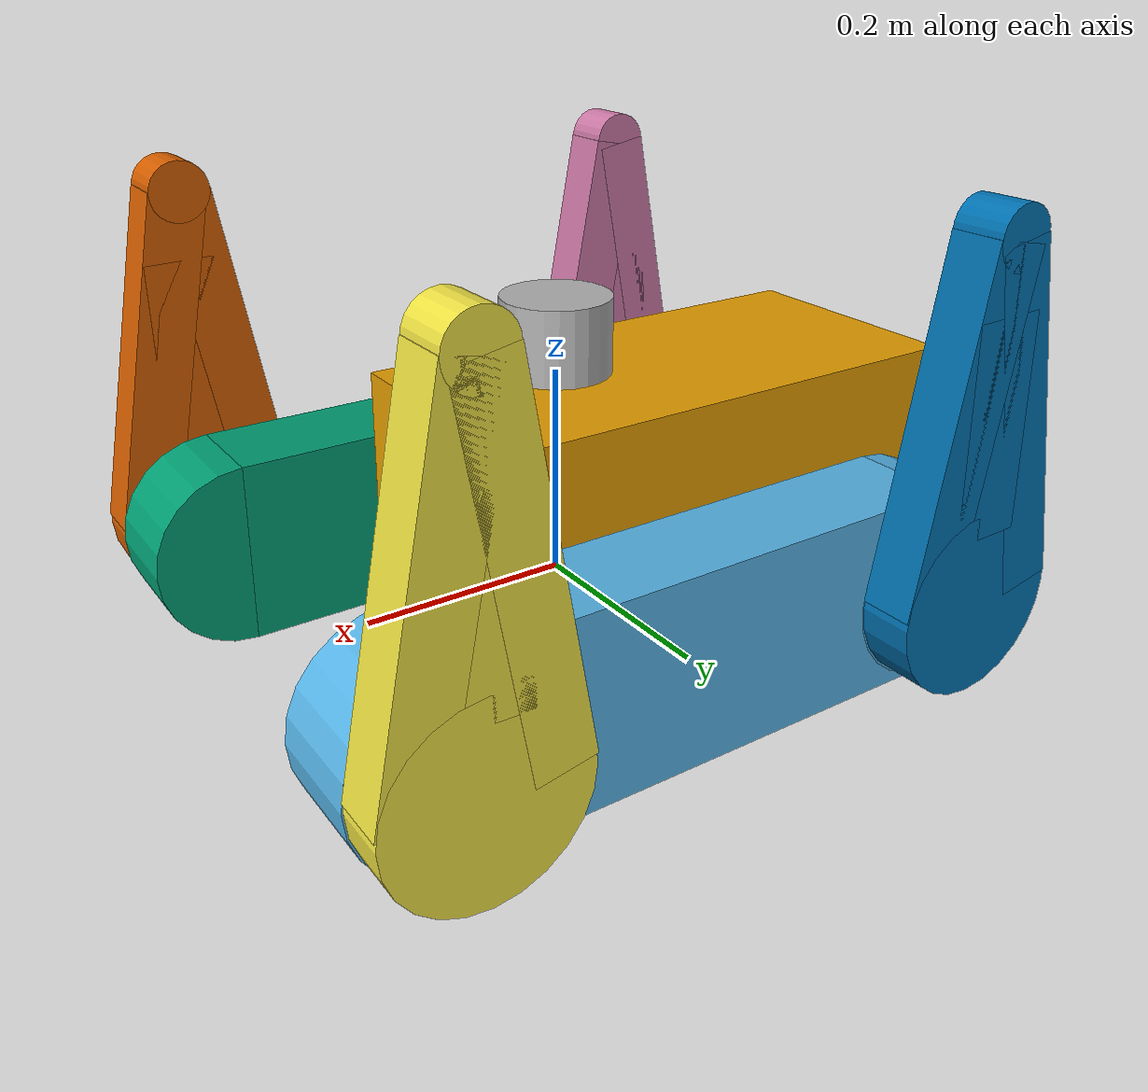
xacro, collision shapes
<?xml version="1.0"?>

<robot name="simple_tracked" xmlns:xacro="http://ros.org/wiki/xacro">
    <xacro:arg name="gpu" default="false" />
    <xacro:property name="gpu" value="$(arg gpu)" />

    <gazebo>
        <gui>
            <plugin name="keyboard"
                filename="/usr/lib/x86_64-linux-gnu/gazebo-11/plugins/libKeyboardGUIPlugin.so" />
        </gui>
    </gazebo>

    <link name="base_link">
        <!-- 惯性属性 -->
        <inertial>
            <origin xyz="-0.122 0 0.118" rpy="1.5708 0 0" />
            <mass value="13.14" />
            <inertia ixx="0.10019" ixy="0" ixz="0" iyy="0.345043" iyz="0" izz="0.302044" />
        </inertial>

        <!-- 碰撞体 -->
        <collision name="base_link_collision">
            <origin xyz="-0.122 0 0.118" rpy="0 0 0" />
            <geometry>
                <box size="0.50017 0.24093 0.139" />
            </geometry>
        </collision>

        <!-- 视觉元素 -->
        <visual name="base_link_visual">
            <origin xyz="-0.122 0 0.118" rpy="0 0 0" />
            <geometry>
                <box size="0.50017 0.24093 0.139" />
            </geometry>
        </visual>
    </link>

    <link name="left_track">
        <!-- 惯性属性 -->
        <inertial>
            <origin xyz="0 0 0.0141" rpy="0 0 0" />
            <mass value="6.06" />
            <inertia ixx="0.002731" ixy="0" ixz="0" iyy="0.032554" iyz="0.000015" izz="0.031391" />
        </inertial>

        <!-- 碰撞体1 -->
        <collision name="left_track_collision">
            <origin xyz="0 0 0.01855" rpy="1.5708 0 1.5708" />
            <geometry>
                <box size="0.09728 0.18094 0.5" />
            </geometry>
        </collision>

        <!-- 碰撞体2 -->
        <collision name="left_track_collision_1">
            <origin xyz="0.25 0 0.01855" rpy="1.5708 0 0" />
            <geometry>
                <cylinder length="0.09728" radius="0.09047" />
            </geometry>
            <!-- 同上，物理属性需通过插件或其他方式设置 -->
        </collision>

        <!-- 碰撞体3 -->
        <collision name="left_track_collision_2">
            <origin xyz="-0.25 0 0.01855" rpy="1.5708 0 0" />
            <geometry>
                <cylinder length="0.09728" radius="0.09047" />
            </geometry>
            <!-- 同上，物理属性需通过插件或其他方式设置 -->
        </collision>

        <!-- 视觉元素1 -->
        <visual name="left_track_visual">
            <origin xyz="0 0 0.01855" rpy="1.5708 0 1.5708" />
            <geometry>
                <box size="0.09728 0.18094 0.5" />
            </geometry>
        </visual>

        <!-- 视觉元素2 -->
        <visual name="left_track_visual_1">
            <origin xyz="0.25 0 0.01855" rpy="1.5708 0 0" />
            <geometry>
                <cylinder length="0.09728" radius="0.09047" />
            </geometry>
        </visual>

        <!-- 视觉元素3 -->
        <visual name="left_track_visual_2">
            <origin xyz="-0.25 0 0.01855" rpy="1.5708 0 0" />
            <geometry>
                <cylinder length="0.09728" radius="0.09047" />
            </geometry>
        </visual>
    </link>

    <joint name="left_track_j" type="fixed">
        <parent link="base_link" />
        <child link="left_track" />
        <origin xyz="0 0.1985 0" rpy="0 0 0" />
    </joint>

    <link name="right_track">
        <!-- 惯性属性 -->
        <inertial>
            <origin xyz="0 0 0.0141" rpy="0 0 0" />
            <mass value="6.06" />
            <inertia ixx="0.002731" ixy="0" ixz="0" iyy="0.032554" iyz="0.000015" izz="0.031391" />
        </inertial>

        <!-- 碰撞体1 -->
        <collision name="right_track_collision">
            <origin xyz="0 0 0.01855" rpy="1.5708 0 1.5708" />
            <geometry>
                <box size="0.09728 0.18094 0.5" />
            </geometry>
        </collision>

        <!-- 碰撞体2 -->
        <collision name="right_track_collision_1">
            <origin xyz="0.25 0 0.01855" rpy="1.5708 0 0" />
            <geometry>
                <cylinder length="0.09728" radius="0.09047" />
            </geometry>
        </collision>

        <!-- 碰撞体3 -->
        <collision name="right_track_collision_2">
            <origin xyz="-0.25 0 0.01855" rpy="1.5708 0 0" />
            <geometry>
                <cylinder length="0.09728" radius="0.09047" />
            </geometry>
        </collision>

        <!-- 视觉元素1 -->
        <visual name="right_track_visual">
            <origin xyz="0 0 0.01855" rpy="1.5708 0 1.5708" />
            <geometry>
                <box size="0.09728 0.18094 0.5" />
            </geometry>
        </visual>

        <!-- 视觉元素2 -->
        <visual name="right_track_visual_1">
            <origin xyz="0.25 0 0.01855" rpy="1.5708 0 0" />
            <geometry>
                <cylinder length="0.09728" radius="0.09047" />
            </geometry>
        </visual>

        <!-- 视觉元素3 -->
        <visual name="right_track_visual_2">
            <origin xyz="-0.25 0 0.01855" rpy="1.5708 0 0" />
            <geometry>
                <cylinder length="0.09728" radius="0.09047" />
            </geometry>
        </visual>
    </link>

    <joint name="right_track_j" type="fixed">
        <parent link="base_link" />
        <child link="right_track" />
        <origin xyz="0 -0.1985 0" rpy="0 0 0" />
    </joint>

    <link name="front_left_flipper">
        <!-- 惯性属性 -->
        <inertial>
            <origin xyz="0.08 0 0" rpy="0 0 0" />
            <mass value="0.75" />
            <inertia ixx="0.0017491" ixy="0.00000028512" ixz="0.0018277" iyy="0.012277"
                iyz="-0.00000036288" izz="0.010941" />
        </inertial>

        <!-- 碰撞体1 -->
        <collision name="front_left_flipper_collision_large_wheel_collision">
            <origin xyz="0 0 0" rpy="1.5708 0 0" />
            <geometry>
                <cylinder length="0.04981" radius="0.089" />
            </geometry>
        </collision>

        <!-- 碰撞体2 -->
        <collision name="front_left_flipper_collision_small_wheel_collision_1">
            <origin xyz="0.33 0 0" rpy="1.5708 0 0" />
            <geometry>
                <cylinder length="0.04981" radius="0.029" />
            </geometry>
        </collision>

        <!-- 碰撞体3 -->
        <collision name="front_left_flipper_collision_top_bar_collision_2">
            <origin xyz="0.165 0 0.0325" rpy="0 0.184162 0" />
            <geometry>
                <box size="0.33 0.04981 0.055" />
            </geometry>
        </collision>

        <!-- 碰撞体4 -->
        <collision name="front_left_flipper_collision_bottom_bar_collision_3">
            <origin xyz="0.165 0 -0.0325" rpy="0 -0.184162 0" />
            <geometry>
                <box size="0.33 0.04981 0.055" />
            </geometry>
        </collision>

        <!-- 碰撞体5 -->
        <collision name="front_left_flipper_collision_middle_bar_collision_4">
            <origin xyz="0.166 0 0.004" rpy="0 -0.02 0" />
            <geometry>
                <box size="0.2 0.04981 0.07" />
            </geometry>
        </collision>

        <!-- 视觉元素1 -->
        <visual name="front_left_flipper_visual_large_wheel_visual">
            <origin xyz="0 0 0" rpy="1.5708 0 0" />
            <geometry>
                <cylinder length="0.04981" radius="0.089" />
            </geometry>
        </visual>

        <!-- 视觉元素2 -->
        <visual name="front_left_flipper_visual_small_wheel_visual_1">
            <origin xyz="0.33 0 0" rpy="1.5708 0 0" />
            <geometry>
                <cylinder length="0.04981" radius="0.029" />
            </geometry>
        </visual>

        <!-- 视觉元素3 -->
        <visual name="front_left_flipper_visual_top_bar_visual_2">
            <origin xyz="0.165 0 0.0325" rpy="0 0.184162 0" />
            <geometry>
                <box size="0.33 0.04981 0.055" />
            </geometry>
        </visual>

        <!-- 视觉元素4 -->
        <visual name="front_left_flipper_visual_bottom_bar_visual_3">
            <origin xyz="0.165 0 -0.0325" rpy="0 -0.184162 0" />
            <geometry>
                <box size="0.33 0.04981 0.055" />
            </geometry>
        </visual>

        <!-- 视觉元素5 -->
        <visual name="front_left_flipper_visual_middle_bar_visual_4">
            <origin xyz="0.166 0 0.004" rpy="0 -0.02 0" />
            <geometry>
                <box size="0.2 0.04981 0.07" />
            </geometry>
        </visual>
    </link>

    <joint name="front_left_flipper_j" type="revolute">
        <parent link="left_track" />
        <child link="front_left_flipper" />

        <!-- 关节相对于父链接的位姿 -->
        <origin xyz="0.25 0.073545 0.0195" rpy="0 -1.57 0" />

        <!-- 旋转轴 -->
        <axis xyz="0 1 0" />

        <!-- 关节限制 -->
        <limit lower="0" upper="3.14" effort="10.0" velocity="1.0" />

        <!-- 动力学属性 -->
        <dynamics damping="0.0" friction="0.0" />
    </joint>

    <link name="rear_left_flipper">
        <!-- 惯性属性 -->
        <inertial>
            <origin xyz="0.08 0 0" rpy="0 0 0" />
            <mass value="0.75" />
            <inertia
                ixx="0.0017491"
                ixy="2.8512e-07"
                ixz="0.0018277"
                iyy="0.012277"
                iyz="-0.00000036288"
                izz="0.010941" />
        </inertial>

        <!-- 碰撞体1 -->
        <collision name="rear_left_flipper_collision_large_wheel_collision">
            <origin xyz="0 0 0" rpy="1.5708 0 0" />
            <geometry>
                <cylinder length="0.04981" radius="0.089" />
            </geometry>
        </collision>

        <!-- 碰撞体2 -->
        <collision name="rear_left_flipper_collision_small_wheel_collision_1">
            <origin xyz="0.33 0 0" rpy="1.5708 0 0" />
            <geometry>
                <cylinder length="0.04981" radius="0.029" />
            </geometry>
        </collision>

        <!-- 碰撞体3 -->
        <collision name="rear_left_flipper_collision_top_bar_collision_2">
            <origin xyz="0.165 0 0.0325" rpy="0 0.184162 0" />
            <geometry>
                <box size="0.33 0.04981 0.055" />
            </geometry>
        </collision>

        <!-- 碰撞体4 -->
        <collision name="rear_left_flipper_collision_bottom_bar_collision_3">
            <origin xyz="0.165 0 -0.0325" rpy="0 -0.184162 0" />
            <geometry>
                <box size="0.33 0.04981 0.055" />
            </geometry>
        </collision>

        <!-- 碰撞体5 -->
        <collision name="rear_left_flipper_collision_middle_bar_collision_4">
            <origin xyz="0.166 0 0.004" rpy="0 -0.02 0" />
            <geometry>
                <box size="0.2 0.04981 0.07" />
            </geometry>
        </collision>

        <!-- 视觉元素1 -->
        <visual name="rear_left_flipper_visual_large_wheel_visual">
            <origin xyz="0 0 0" rpy="1.5708 0 0" />
            <geometry>
                <cylinder length="0.04981" radius="0.089" />
            </geometry>
        </visual>

        <!-- 视觉元素2 -->
        <visual name="rear_left_flipper_visual_small_wheel_visual_1">
            <origin xyz="0.33 0 0" rpy="1.5708 0 0" />
            <geometry>
                <cylinder length="0.04981" radius="0.029" />
            </geometry>
        </visual>

        <!-- 视觉元素3 -->
        <visual name="rear_left_flipper_visual_top_bar_visual_2">
            <origin xyz="0.165 0 0.0325" rpy="0 0.184162 0" />
            <geometry>
                <box size="0.33 0.04981 0.055" />
            </geometry>
        </visual>

        <!-- 视觉元素4 -->
        <visual name="rear_left_flipper_visual_bottom_bar_visual_3">
            <origin xyz="0.165 0 -0.0325" rpy="0 -0.184162 0" />
            <geometry>
                <box size="0.33 0.04981 0.055" />
            </geometry>
        </visual>

        <!-- 视觉元素5 -->
        <visual name="rear_left_flipper_visual_middle_bar_visual_4">
            <origin xyz="0.166 0 0.004" rpy="0 -0.02 0" />
            <geometry>
                <box size="0.2 0.04981 0.07" />
            </geometry>
        </visual>
    </link>

    <joint name="rear_left_flipper_j" type="revolute">
        <!-- 父子链接 -->
        <parent link="left_track" />
        <child link="rear_left_flipper" />

        <!-- 关节在父链接坐标系中的位姿 -->
        <origin xyz="-0.25 0.073545 0.0195" rpy="3.14159 -1.57 0" />

        <!-- 旋转轴 -->
        <axis xyz="0 1 0" />

        <!-- 关节限制 -->
        <limit lower="0" upper="3.14" effort="10.0" velocity="1.0" />

        <!-- 动力学属性（URDF仅支持 damping / friction） -->
        <dynamics damping="0.0" friction="0.0" />

        <!-- 硬件接口通常放在传动装置里。若需要在joint中声明，可这样添加： -->
    </joint>

    <link name="front_right_flipper">
        <!-- 惯性属性 -->
        <inertial>
            <origin xyz="-0.08 0 0" rpy="0 0 0" />
            <mass value="0.75" />
            <inertia
                ixx="0.0017491"
                ixy="2.8512e-07"
                ixz="0.0018277"
                iyy="0.012277"
                iyz="-3.6288e-07"
                izz="0.010941" />
        </inertial>

        <!-- 碰撞体1 -->
        <collision name="front_right_flipper_collision_large_wheel_collision">
            <origin xyz="0 0 0" rpy="1.5708 0 0" />
            <geometry>
                <cylinder length="0.04981" radius="0.089" />
            </geometry>
        </collision>

        <!-- 碰撞体2 -->
        <collision name="front_right_flipper_collision_small_wheel_collision_1">
            <origin xyz="-0.33 0 0" rpy="1.5708 0 0" />
            <geometry>
                <cylinder length="0.04981" radius="0.029" />
            </geometry>
        </collision>

        <!-- 碰撞体3 -->
        <collision name="front_right_flipper_collision_top_bar_collision_2">
            <origin xyz="-0.165 0 0.0325" rpy="0 0.184162 -3.14159" />
            <geometry>
                <box size="0.33 0.04981 0.055" />
            </geometry>
        </collision>

        <!-- 碰撞体4 -->
        <collision name="front_right_flipper_collision_bottom_bar_collision_3">
            <origin xyz="-0.165 0 -0.0325" rpy="0 -0.184162 -3.14159" />
            <geometry>
                <box size="0.33 0.04981 0.055" />
            </geometry>
        </collision>

        <!-- 碰撞体5 -->
        <collision name="front_right_flipper_collision_middle_bar_collision_4">
            <origin xyz="-0.166 0 0.004" rpy="0 -0.02 -3.14159" />
            <geometry>
                <box size="0.2 0.04981 0.07" />
            </geometry>
        </collision>

        <!-- 视觉元素1 -->
        <visual name="front_right_flipper_visual_large_wheel_visual">
            <origin xyz="0 0 0" rpy="1.5708 0 0" />
            <geometry>
                <cylinder length="0.04981" radius="0.089" />
            </geometry>
        </visual>

        <!-- 视觉元素2 -->
        <visual name="front_right_flipper_visual_small_wheel_visual_1">
            <origin xyz="-0.33 0 0" rpy="1.5708 0 0" />
            <geometry>
                <cylinder length="0.04981" radius="0.029" />
            </geometry>
        </visual>

        <!-- 视觉元素3 -->
        <visual name="front_right_flipper_visual_top_bar_visual_2">
            <origin xyz="-0.165 0 0.0325" rpy="0 0.184162 -3.14159" />
            <geometry>
                <box size="0.33 0.04981 0.055" />
            </geometry>
        </visual>

        <!-- 视觉元素4 -->
        <visual name="front_right_flipper_visual_bottom_bar_visual_3">
            <origin xyz="-0.165 0 -0.0325" rpy="0 -0.184162 -3.14159" />
            <geometry>
                <box size="0.33 0.04981 0.055" />
            </geometry>
        </visual>

        <!-- 视觉元素5 -->
        <visual name="front_right_flipper_visual_middle_bar_visual_4">
            <origin xyz="-0.166 0 0.004" rpy="0 -0.02 -3.14159" />
            <geometry>
                <box size="0.2 0.04981 0.07" />
            </geometry>
        </visual>
    </link>

    <joint name="front_right_flipper_j" type="revolute">
        <parent link="right_track" />
        <child link="front_right_flipper" />

        <!-- 关节相对于父链接的位姿 -->
        <origin xyz="0.25 -0.073545 0.0195" rpy="3.14159 1.57 3.14159" />

        <!-- 旋转轴 -->
        <axis xyz="0 1 0" />

        <!-- 关节限制 -->
        <limit lower="0" upper="3.14" effort="10.0" velocity="1.0" />

        <!-- 动力学属性 -->
        <dynamics damping="0.0" friction="0.0" />
    </joint>

    <link name="rear_right_flipper">
        <!-- 惯性属性 -->
        <inertial>
            <origin xyz="-0.08 0 0" rpy="0 0 0" />
            <mass value="0.75" />
            <inertia
                ixx="0.0017491"
                ixy="2.8512e-07"
                ixz="0.0018277"
                iyy="0.012277"
                iyz="-3.6288e-07"
                izz="0.010941" />
        </inertial>

        <!-- 碰撞体1 -->
        <collision name="rear_right_flipper_collision_large_wheel_collision">
            <origin xyz="0 0 0" rpy="1.5708 0 0" />
            <geometry>
                <cylinder length="0.04981" radius="0.089" />
            </geometry>
        </collision>

        <!-- 碰撞体2 -->
        <collision name="rear_right_flipper_collision_small_wheel_collision_1">
            <origin xyz="-0.33 0 0" rpy="1.5708 0 0" />
            <geometry>
                <cylinder length="0.04981" radius="0.029" />
            </geometry>
        </collision>

        <!-- 碰撞体3 -->
        <collision name="rear_right_flipper_collision_top_bar_collision_2">
            <origin xyz="-0.165 0 0.0325" rpy="0 0.184162 -3.14159" />
            <geometry>
                <box size="0.33 0.04981 0.055" />
            </geometry>
        </collision>

        <!-- 碰撞体4 -->
        <collision name="rear_right_flipper_collision_bottom_bar_collision_3">
            <origin xyz="-0.165 0 -0.0325" rpy="0 -0.184162 -3.14159" />
            <geometry>
                <box size="0.33 0.04981 0.055" />
            </geometry>
        </collision>

        <!-- 碰撞体5 -->
        <collision name="rear_right_flipper_collision_middle_bar_collision_4">
            <origin xyz="-0.166 0 0.004" rpy="0 -0.02 -3.14159" />
            <geometry>
                <box size="0.2 0.04981 0.07" />
            </geometry>
        </collision>

        <!-- 视觉元素1 -->
        <visual name="rear_right_flipper_visual_large_wheel_visual">
            <origin xyz="0 0 0" rpy="1.5708 0 0" />
            <geometry>
                <cylinder length="0.04981" radius="0.089" />
            </geometry>
        </visual>

        <!-- 视觉元素2 -->
        <visual name="rear_right_flipper_visual_small_wheel_visual_1">
            <origin xyz="-0.33 0 0" rpy="1.5708 0 0" />
            <geometry>
                <cylinder length="0.04981" radius="0.029" />
            </geometry>
        </visual>

        <!-- 视觉元素3 -->
        <visual name="rear_right_flipper_visual_top_bar_visual_2">
            <origin xyz="-0.165 0 0.0325" rpy="0 0.184162 -3.14159" />
            <geometry>
                <box size="0.33 0.04981 0.055" />
            </geometry>
        </visual>

        <!-- 视觉元素4 -->
        <visual name="rear_right_flipper_visual_bottom_bar_visual_3">
            <origin xyz="-0.165 0 -0.0325" rpy="0 -0.184162 -3.14159" />
            <geometry>
                <box size="0.33 0.04981 0.055" />
            </geometry>
        </visual>

        <!-- 视觉元素5 -->
        <visual name="rear_right_flipper_visual_middle_bar_visual_4">
            <origin xyz="-0.166 0 0.004" rpy="0 -0.02 -3.14159" />
            <geometry>
                <box size="0.2 0.04981 0.07" />
            </geometry>
        </visual>
    </link>

    <joint name="rear_right_flipper_j" type="revolute">
        <!-- 父子链接 -->
        <parent link="right_track" />
        <child link="rear_right_flipper" />

        <!-- 关节在父链接坐标系中的位姿（根据实际需求修改） -->
        <origin xyz="-0.25 -0.073545 0.0195" rpy="0 1.57 3.14159" />

        <!-- 旋转轴 -->
        <axis xyz="0 1 0" />

        <!-- 关节限制 -->
        <limit lower="0" upper="3.14" effort="10.0" velocity="1.0" />

        <!-- 动力学属性（URDF仅支持 damping / friction） -->
        <dynamics damping="0.0" friction="0.0" />

    </joint>

    <joint name="velodyne_base_mount_joint" type="fixed">
        <origin rpy="0 0 0" xyz="0 0 0.2" />
        <parent link="base_link" />
        <child link="velodyne_base_link" />
    </joint>
    <link name="velodyne_base_link">
        <inertial>
            <mass value="0.83" />
            <origin xyz="0 0 0.03585" />
            <inertia ixx="0.000908059425" ixy="0" ixz="0" iyy="0.000908059425" iyz="0"
                izz="0.0011049624" />
        </inertial>
        <visual>
            <geometry>
                <mesh filename="package://velodyne_description/meshes/VLP16_base_1.dae" />
            </geometry>
        </visual>
        <visual>
            <geometry>
                <mesh filename="package://velodyne_description/meshes/VLP16_base_2.dae" />
            </geometry>
        </visual>
        <collision>
            <origin rpy="0 0 0" xyz="0 0 0.03585" />
            <geometry>
                <cylinder length="0.0717" radius="0.0516" />
            </geometry>
        </collision>
    </link>
    <joint name="velodyne_base_scan_joint" type="fixed">
        <origin rpy="0 0 0" xyz="0 0 0.0377" />
        <parent link="velodyne_base_link" />
        <child link="velodyne" />
    </joint>
    <link name="velodyne">
        <inertial>
            <mass value="0.01" />
            <origin xyz="0 0 0" />
            <inertia ixx="1e-7" ixy="0" ixz="0" iyy="1e-7" iyz="0" izz="1e-7" />
        </inertial>
        <visual>
            <origin xyz="0 0 -0.0377" />
            <geometry>
                <mesh filename="package://velodyne_description/meshes/VLP16_scan.dae" />
            </geometry>
        </visual>
    </link>
    <!-- Gazebo requires the velodyne_gazebo_plugins package -->
    <gazebo reference="velodyne">
        <sensor name="velodyne-VLP16" type="ray">
            <pose>0 0 0 0 0 0</pose>
            <visualize>false</visualize>
            <update_rate>10</update_rate>
            <ray>
                <scan>
                    <horizontal>
                        <samples>440</samples>
                        <resolution>1</resolution>
                        <min_angle>-3.141592653589793</min_angle>
                        <max_angle>3.141592653589793</max_angle>
                    </horizontal>
                    <vertical>
                        <samples>16</samples>
                        <resolution>1</resolution>
                        <min_angle>-0.2617993877991494</min_angle>
                        <max_angle> 0.2617993877991494</max_angle>
                    </vertical>
                </scan>
                <range>
                    <min>0.3</min>
                    <max>131.0</max>
                    <resolution>0.001</resolution>
                </range>
                <noise>
                    <type>gaussian</type>
                    <mean>0.0</mean>
                    <stddev>0.0</stddev>
                </noise>
            </ray>
            <plugin filename="libgazebo_ros_velodyne_laser.so" name="gazebo_ros_laser_controller">
                <topicName>/velodyne_points</topicName>
                <frameName>velodyne</frameName>
                <min_range>0.9</min_range>
                <max_range>130.0</max_range>
                <gaussianNoise>0.008</gaussianNoise>
            </plugin>
        </sensor>
    </gazebo>

    <!-- Transmission for front_left_flipper_j -->
    <transmission name="tran1">
        <type>transmission_interface/SimpleTransmission</type>
        <joint name="front_left_flipper_j">
            <hardwareInterface>hardware_interface/EffortJointInterface</hardwareInterface>
        </joint>
        <actuator name="motor1">
            <hardwareInterface>hardware_interface/EffortJointInterface</hardwareInterface>
            <mechanicalReduction>1</mechanicalReduction>
        </actuator>
    </transmission>

    <!-- Transmission for rear_left_flipper_j -->
    <transmission name="tran2">
        <type>transmission_interface/SimpleTransmission</type>
        <joint name="rear_left_flipper_j">
            <hardwareInterface>hardware_interface/EffortJointInterface</hardwareInterface>
        </joint>
        <actuator name="motor2">
            <hardwareInterface>hardware_interface/EffortJointInterface</hardwareInterface>
            <mechanicalReduction>1</mechanicalReduction>
        </actuator>
    </transmission>

    <!-- Transmission for front_right_flipper_j -->
    <transmission name="tran3">
        <type>transmission_interface/SimpleTransmission</type>
        <joint name="front_right_flipper_j">
            <hardwareInterface>hardware_interface/EffortJointInterface</hardwareInterface>
        </joint>
        <actuator name="motor3">
            <hardwareInterface>hardware_interface/EffortJointInterface</hardwareInterface>
            <mechanicalReduction>1</mechanicalReduction>
        </actuator>
    </transmission>

    <!-- Transmission for rear_right_flipper_j -->
    <transmission name="tran4">
        <type>transmission_interface/SimpleTransmission</type>
        <joint name="rear_right_flipper_j">
            <hardwareInterface>hardware_interface/EffortJointInterface</hardwareInterface>
        </joint>
        <actuator name="motor4">
            <hardwareInterface>hardware_interface/EffortJointInterface</hardwareInterface>
            <mechanicalReduction>1</mechanicalReduction>
        </actuator>
    </transmission>

    <!-- Gazebo Plugins -->
    <gazebo>

        <plugin name="simple_tracked_vehicle"
            filename="/usr/lib/x86_64-linux-gnu/gazebo-11/plugins/libSimpleTrackedVehiclePlugin.so">

            <left_flipper>front_left_flipper</left_flipper>
            <left_flipper>rear_left_flipper</left_flipper>
            <right_flipper>front_right_flipper</right_flipper>
            <right_flipper>rear_right_flipper</right_flipper>
            <body>base_link</body>

            <left_track>left_track</left_track>
            <right_track>right_track</right_track>

            <track_mu>2</track_mu>
            <track_mu2>0.5</track_mu2>
        </plugin>

        <plugin name="keyboard_control"
            filename="/usr/lib/x86_64-linux-gnu/gazebo-11/plugins/libKeysToCmdVelPlugin.so">
            <publish_as_twist>true</publish_as_twist>
            <cmd_vel_topic>~/simple_tracked/cmd_vel_twist</cmd_vel_topic>
        </plugin>
        <!-- Gazebo ROS Control Plugin -->
        <plugin name="gazebo_ros_control" filename="libgazebo_ros_control.so">
            <robotNamespace>/simple_tracked</robotNamespace>
            <controlPeriod>0.001</controlPeriod>
            <robotSimType>gazebo_ros_control/DefaultRobotHWSim</robotSimType>
        </plugin>

        <!-- setup of the interface -->
            <plugin name='tracked_vehicle_interface'
                filename='libgazebo_ros_tracked_vehicle_interface.so'>
                <commandROSTopic>/cmd_vel</commandROSTopic>
                <commandIGNTopic>~/simple_tracked/cmd_vel_twist</commandIGNTopic>

                <robotBaseFrame>base_link</robotBaseFrame>

                <tracks_separation>0.571</tracks_separation>
                <publishOdomTF>true</publishOdomTF>
                <updateRate>100.0</updateRate>

                <!-- [encoder,world] - choose world for ground truth -->
            </plugin>

        <!-- Keyboard Control Plugin -->
    </gazebo>

</robot>
